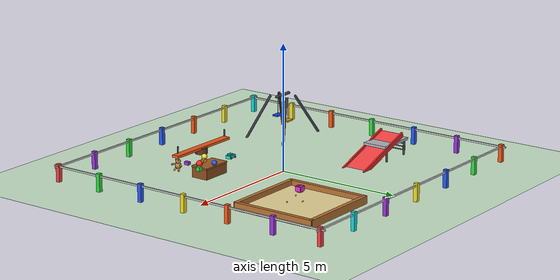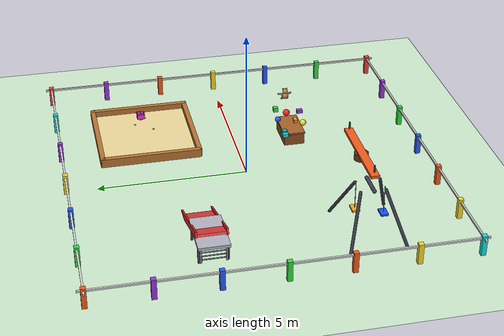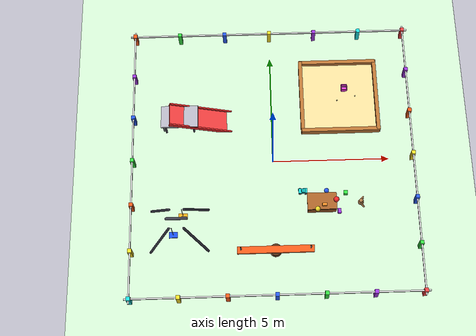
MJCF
<mujoco model="childrens_playground_toys">
  <compiler angle="degree" coordinate="local"/>
  <option timestep="0.002" gravity="0 0 -9.81" integrator="RK4"/>

  <visual>
    <headlight ambient="0.35 0.35 0.35" diffuse="0.7 0.7 0.7" specular="0.1 0.1 0.1"/>
    <rgba haze="0.9 0.95 1 1"/>
  </visual>

  <asset>
    <!-- No textures/materials per instructions -->
  </asset>

  <worldbody>
    <!-- Ground -->
    <geom name="ground" type="plane" size="30 30 0.1" rgba="0.80 0.92 0.80 1" friction="1 0.02 0.001"/>

    <!-- Soft-ish sandbox border (static) -->
    <body name="sandbox" pos="3 3 0">
      <geom name="sandbox_floor" type="box" pos="0 0 0.05" size="1.6 1.6 0.05" rgba="0.93 0.85 0.60 1" friction="1.2 0.02 0.001"/>
      <!-- border walls -->
      <geom name="sandbox_wall_n" type="box" pos="0 1.65 0.15" size="1.7 0.08 0.15" rgba="0.72 0.45 0.20 1"/>
      <geom name="sandbox_wall_s" type="box" pos="0 -1.65 0.15" size="1.7 0.08 0.15" rgba="0.72 0.45 0.20 1"/>
      <geom name="sandbox_wall_e" type="box" pos="1.65 0 0.15" size="0.08 1.7 0.15" rgba="0.72 0.45 0.20 1"/>
      <geom name="sandbox_wall_w" type="box" pos="-1.65 0 0.15" size="0.08 1.7 0.15" rgba="0.72 0.45 0.20 1"/>
    </body>

    <!-- Slide (static) -->
    <body name="slide" pos="-4 2 0">
      <!-- support platform -->
      <geom name="slide_platform" type="box" pos="0 0 0.6" size="0.8 0.5 0.05" rgba="0.70 0.70 0.75 1"/>
      <!-- ladder (simple) -->
      <geom name="slide_ladder_left" type="capsule" fromto="-0.7 -0.4 0.05  -0.7 -0.4 0.6" size="0.03" rgba="0.6 0.6 0.65 1"/>
      <geom name="slide_ladder_right" type="capsule" fromto="-0.7 0.4 0.05  -0.7 0.4 0.6" size="0.03" rgba="0.6 0.6 0.65 1"/>
      <geom name="slide_rung1" type="capsule" fromto="-0.7 -0.4 0.15  -0.7 0.4 0.15" size="0.02" rgba="0.6 0.6 0.65 1"/>
      <geom name="slide_rung2" type="capsule" fromto="-0.7 -0.4 0.28  -0.7 0.4 0.28" size="0.02" rgba="0.6 0.6 0.65 1"/>
      <geom name="slide_rung3" type="capsule" fromto="-0.7 -0.4 0.41  -0.7 0.4 0.41" size="0.02" rgba="0.6 0.6 0.65 1"/>
      <geom name="slide_rung4" type="capsule" fromto="-0.7 -0.4 0.54  -0.7 0.4 0.54" size="0.02" rgba="0.6 0.6 0.65 1"/>

      <!-- slide ramp (tilted box) -->
      <geom name="slide_ramp" type="box" pos="0.9 0 0.35" size="1.4 0.45 0.04" euler="0 20 0" rgba="0.95 0.25 0.25 1" friction="0.6 0.01 0.001"/>
      <!-- side rails -->
      <geom name="slide_rail_left" type="box" pos="0.9 -0.48 0.38" size="1.4 0.03 0.10" euler="0 20 0" rgba="0.90 0.15 0.15 1"/>
      <geom name="slide_rail_right" type="box" pos="0.9 0.48 0.38" size="1.4 0.03 0.10" euler="0 20 0" rgba="0.90 0.15 0.15 1"/>

      <!-- legs -->
      <geom name="slide_leg1" type="capsule" fromto="-0.6 -0.45 0  -0.6 -0.45 0.6" size="0.04" rgba="0.25 0.25 0.30 1"/>
      <geom name="slide_leg2" type="capsule" fromto="-0.6 0.45 0  -0.6 0.45 0.6" size="0.04" rgba="0.25 0.25 0.30 1"/>
      <geom name="slide_leg3" type="capsule" fromto="0.6 -0.45 0  0.6 -0.45 0.6" size="0.04" rgba="0.25 0.25 0.30 1"/>
      <geom name="slide_leg4" type="capsule" fromto="0.6 0.45 0  0.6 0.45 0.6" size="0.04" rgba="0.25 0.25 0.30 1"/>
    </body>

    <!-- Swing set (static frame + dynamic seats) -->
    <body name="swing_set" pos="-4 -3 0">
      <!-- A-frame legs -->
      <geom name="swing_leg1" type="capsule" fromto="-1.2 -0.9 0  -0.3 -0.4 1.6" size="0.05" rgba="0.2 0.2 0.25 1"/>
      <geom name="swing_leg2" type="capsule" fromto="-1.2 0.9 0  -0.3 0.4 1.6" size="0.05" rgba="0.2 0.2 0.25 1"/>
      <geom name="swing_leg3" type="capsule" fromto="1.2 -0.9 0  0.3 -0.4 1.6" size="0.05" rgba="0.2 0.2 0.25 1"/>
      <geom name="swing_leg4" type="capsule" fromto="1.2 0.9 0  0.3 0.4 1.6" size="0.05" rgba="0.2 0.2 0.25 1"/>

      <!-- top bar -->
      <geom name="swing_top" type="capsule" fromto="-0.4 0 1.65  0.4 0 1.65" size="0.06" rgba="0.25 0.25 0.30 1"/>

      <!-- left swing: hinges + seat -->
      <body name="swing_left_hanger" pos="-0.2 -0.4 1.65">
        <joint name="swing_left_hinge" type="hinge" axis="0 1 0" limited="true" range="-60 60" damping="0.5"/>
        <geom name="swing_left_chain" type="capsule" fromto="0 0 0   0 0 -0.9" size="0.01" rgba="0.75 0.75 0.78 1"/>
        <body name="swing_left_seat" pos="0 0 -0.95">
          <geom name="swing_left_seat_geom" type="box" pos="0 0 0" size="0.18 0.12 0.03" rgba="0.10 0.30 0.95 1" friction="1 0.02 0.001"/>
        </body>
      </body>

      <!-- right swing -->
      <body name="swing_right_hanger" pos="0.2 0.4 1.65">
        <joint name="swing_right_hinge" type="hinge" axis="0 1 0" limited="true" range="-60 60" damping="0.5"/>
        <geom name="swing_right_chain" type="capsule" fromto="0 0 0   0 0 -0.9" size="0.01" rgba="0.75 0.75 0.78 1"/>
        <body name="swing_right_seat" pos="0 0 -0.95">
          <geom name="swing_right_seat_geom" type="box" pos="0 0 0" size="0.18 0.12 0.03" rgba="0.95 0.65 0.10 1" friction="1 0.02 0.001"/>
        </body>
      </body>
    </body>

    <!-- Seesaw (static base + moving plank) -->
    <body name="seesaw" pos="0 -4 0">
      <geom name="seesaw_base" type="cylinder" pos="0 0 0.12" size="0.25 0.12" rgba="0.35 0.20 0.10 1"/>
      <body name="seesaw_plank" pos="0 0 0.25">
        <joint name="seesaw_hinge" type="hinge" axis="0 1 0" limited="true" range="-25 25" damping="1"/>
        <geom name="seesaw_plank_geom" type="box" pos="0 0 0" size="1.6 0.15 0.05" rgba="0.95 0.35 0.10 1" friction="1.2 0.02 0.001"/>
        <geom name="seesaw_handle_left" type="capsule" fromto="-1.45 0 0.12  -1.45 0 0.35" size="0.03" rgba="0.15 0.15 0.15 1"/>
        <geom name="seesaw_handle_right" type="capsule" fromto="1.45 0 0.12  1.45 0 0.35" size="0.03" rgba="0.15 0.15 0.15 1"/>
      </body>
    </body>

    <!-- Toy chest (static) -->
    <body name="toy_chest" pos="2 -2 0">
      <geom name="toy_chest_base" type="box" pos="0 0 0.2" size="0.6 0.35 0.2" rgba="0.55 0.30 0.12 1" friction="1 0.02 0.001"/>
      <geom name="toy_chest_lid" type="box" pos="0 0 0.43" size="0.62 0.37 0.03" rgba="0.65 0.38 0.16 1"/>
    </body>

    <!-- Moving toys: balls, blocks, toy car, teddy-like shape -->
    <body name="ball_red" pos="2.6 -2.0 0.6">
      <freejoint name="ball_red_free"/>
      <geom name="ball_red_geom" type="sphere" size="0.12" rgba="0.95 0.15 0.15 1" friction="0.9 0.01 0.001" density="300"/>
    </body>

    <body name="ball_blue" pos="2.2 -1.6 0.6">
      <freejoint name="ball_blue_free"/>
      <geom name="ball_blue_geom" type="sphere" size="0.10" rgba="0.15 0.35 0.95 1" friction="0.9 0.01 0.001" density="300"/>
    </body>

    <body name="ball_yellow" pos="1.8 -2.4 0.6">
      <freejoint name="ball_yellow_free"/>
      <geom name="ball_yellow_geom" type="sphere" size="0.11" rgba="0.95 0.85 0.15 1" friction="0.9 0.01 0.001" density="300"/>
    </body>

    <body name="block_green" pos="3.0 -1.7 0.55">
      <freejoint name="block_green_free"/>
      <geom name="block_green_geom" type="box" size="0.08 0.08 0.08" rgba="0.20 0.85 0.25 1" friction="1.1 0.02 0.001" density="500"/>
    </body>

    <body name="block_purple" pos="2.7 -2.5 0.55">
      <freejoint name="block_purple_free"/>
      <geom name="block_purple_geom" type="box" size="0.07 0.10 0.06" rgba="0.60 0.20 0.85 1" friction="1.1 0.02 0.001" density="500"/>
    </body>

    <body name="block_orange" pos="2.1 -2.2 0.55">
      <freejoint name="block_orange_free"/>
      <geom name="block_orange_geom" type="box" size="0.10 0.06 0.06" rgba="0.95 0.55 0.15 1" friction="1.1 0.02 0.001" density="500"/>
    </body>

    <!-- Toy car (simple composite) -->
    <body name="toy_car" pos="1.2 -1.6 0.55">
      <freejoint name="toy_car_free"/>
      <geom name="toy_car_body" type="box" pos="0 0 0.06" size="0.18 0.10 0.06" rgba="0.10 0.85 0.85 1" friction="1.2 0.02 0.001" density="400"/>
      <geom name="toy_car_cabin" type="box" pos="0.03 0 0.12" size="0.09 0.08 0.05" rgba="0.05 0.65 0.65 1" density="250"/>
      <geom name="toy_car_wheel_fl" type="cylinder" pos="0.12 0.11 0.03" size="0.04 0.02" euler="90 0 0" rgba="0.12 0.12 0.12 1" friction="2 0.02 0.001" density="300"/>
      <geom name="toy_car_wheel_fr" type="cylinder" pos="0.12 -0.11 0.03" size="0.04 0.02" euler="90 0 0" rgba="0.12 0.12 0.12 1" friction="2 0.02 0.001" density="300"/>
      <geom name="toy_car_wheel_rl" type="cylinder" pos="-0.12 0.11 0.03" size="0.04 0.02" euler="90 0 0" rgba="0.12 0.12 0.12 1" friction="2 0.02 0.001" density="300"/>
      <geom name="toy_car_wheel_rr" type="cylinder" pos="-0.12 -0.11 0.03" size="0.04 0.02" euler="90 0 0" rgba="0.12 0.12 0.12 1" friction="2 0.02 0.001" density="300"/>
    </body>

    <!-- Teddy bear-like toy (capsules/spheres) -->
    <body name="teddy" pos="3.6 -2.2 0.65">
      <freejoint name="teddy_free"/>
      <geom name="teddy_body" type="sphere" pos="0 0 0.08" size="0.12" rgba="0.70 0.50 0.30 1" density="200" friction="1 0.02 0.001"/>
      <geom name="teddy_head" type="sphere" pos="0 0 0.25" size="0.09" rgba="0.72 0.52 0.32 1" density="200"/>
      <geom name="teddy_ear_l" type="sphere" pos="0.06 0.06 0.32" size="0.03" rgba="0.72 0.52 0.32 1" density="150"/>
      <geom name="teddy_ear_r" type="sphere" pos="0.06 -0.06 0.32" size="0.03" rgba="0.72 0.52 0.32 1" density="150"/>
      <geom name="teddy_arm_l" type="capsule" fromto="0 0.10 0.14  0.10 0.22 0.12" size="0.03" rgba="0.68 0.48 0.28 1" density="180"/>
      <geom name="teddy_arm_r" type="capsule" fromto="0 -0.10 0.14  0.10 -0.22 0.12" size="0.03" rgba="0.68 0.48 0.28 1" density="180"/>
      <geom name="teddy_leg_l" type="capsule" fromto="0.02 0.06 0.02  0.10 0.10 -0.08" size="0.035" rgba="0.68 0.48 0.28 1" density="220"/>
      <geom name="teddy_leg_r" type="capsule" fromto="0.02 -0.06 0.02  0.10 -0.10 -0.08" size="0.035" rgba="0.68 0.48 0.28 1" density="220"/>
    </body>

    <!-- Small toy bucket (open top approximated by thin walls; moving) -->
    <body name="toy_bucket" pos="3.2 3.1 0.65">
      <freejoint name="toy_bucket_free"/>
      <geom name="bucket_bottom" type="cylinder" pos="0 0 0.03" size="0.12 0.03" rgba="0.95 0.25 0.85 1" density="250" friction="1 0.02 0.001"/>
      <geom name="bucket_wall1" type="box" pos="0.12 0 0.12" size="0.01 0.12 0.09" rgba="0.90 0.20 0.80 1" density="200"/>
      <geom name="bucket_wall2" type="box" pos="-0.12 0 0.12" size="0.01 0.12 0.09" rgba="0.90 0.20 0.80 1" density="200"/>
      <geom name="bucket_wall3" type="box" pos="0 0.12 0.12" size="0.12 0.01 0.09" rgba="0.90 0.20 0.80 1" density="200"/>
      <geom name="bucket_wall4" type="box" pos="0 -0.12 0.12" size="0.12 0.01 0.09" rgba="0.90 0.20 0.80 1" density="200"/>
      <geom name="bucket_handle" type="capsule" fromto="-0.10 0 0.22  0.10 0 0.22" size="0.01" rgba="0.75 0.75 0.78 1" density="150"/>
    </body>

    <!-- A few scattered "sand" pebbles (moving small spheres) -->
    <body name="pebble1" pos="3.3 3.3 0.35">
      <freejoint name="pebble1_free"/>
      <geom name="pebble1_geom" type="sphere" size="0.03" rgba="0.85 0.78 0.55 1" density="800" friction="1.2 0.02 0.001"/>
    </body>
    <body name="pebble2" pos="2.9 2.7 0.35">
      <freejoint name="pebble2_free"/>
      <geom name="pebble2_geom" type="sphere" size="0.028" rgba="0.88 0.80 0.58 1" density="800" friction="1.2 0.02 0.001"/>
    </body>
    <body name="pebble3" pos="3.7 2.9 0.35">
      <freejoint name="pebble3_free"/>
      <geom name="pebble3_geom" type="sphere" size="0.026" rgba="0.82 0.76 0.55 1" density="800" friction="1.2 0.02 0.001"/>
    </body>

    <!-- Perimeter colorful fence posts (static) -->
    <body name="fence" pos="0 0 0">
      <!-- north line -->
      <geom name="fence_n1" type="box" pos="-6 6 0.35" size="0.08 0.08 0.35" rgba="0.95 0.35 0.10 1"/>
      <geom name="fence_n2" type="box" pos="-4 6 0.35" size="0.08 0.08 0.35" rgba="0.20 0.85 0.25 1"/>
      <geom name="fence_n3" type="box" pos="-2 6 0.35" size="0.08 0.08 0.35" rgba="0.15 0.35 0.95 1"/>
      <geom name="fence_n4" type="box" pos="0 6 0.35" size="0.08 0.08 0.35" rgba="0.95 0.85 0.15 1"/>
      <geom name="fence_n5" type="box" pos="2 6 0.35" size="0.08 0.08 0.35" rgba="0.60 0.20 0.85 1"/>
      <geom name="fence_n6" type="box" pos="4 6 0.35" size="0.08 0.08 0.35" rgba="0.10 0.85 0.85 1"/>
      <geom name="fence_n7" type="box" pos="6 6 0.35" size="0.08 0.08 0.35" rgba="0.95 0.25 0.25 1"/>

      <!-- south line -->
      <geom name="fence_s1" type="box" pos="-6 -6 0.35" size="0.08 0.08 0.35" rgba="0.10 0.85 0.85 1"/>
      <geom name="fence_s2" type="box" pos="-4 -6 0.35" size="0.08 0.08 0.35" rgba="0.95 0.85 0.15 1"/>
      <geom name="fence_s3" type="box" pos="-2 -6 0.35" size="0.08 0.08 0.35" rgba="0.95 0.35 0.10 1"/>
      <geom name="fence_s4" type="box" pos="0 -6 0.35" size="0.08 0.08 0.35" rgba="0.15 0.35 0.95 1"/>
      <geom name="fence_s5" type="box" pos="2 -6 0.35" size="0.08 0.08 0.35" rgba="0.20 0.85 0.25 1"/>
      <geom name="fence_s6" type="box" pos="4 -6 0.35" size="0.08 0.08 0.35" rgba="0.60 0.20 0.85 1"/>
      <geom name="fence_s7" type="box" pos="6 -6 0.35" size="0.08 0.08 0.35" rgba="0.95 0.25 0.25 1"/>

      <!-- west line -->
      <geom name="fence_w1" type="box" pos="-6 -4 0.35" size="0.08 0.08 0.35" rgba="0.95 0.85 0.15 1"/>
      <geom name="fence_w2" type="box" pos="-6 -2 0.35" size="0.08 0.08 0.35" rgba="0.95 0.35 0.10 1"/>
      <geom name="fence_w3" type="box" pos="-6 0 0.35" size="0.08 0.08 0.35" rgba="0.20 0.85 0.25 1"/>
      <geom name="fence_w4" type="box" pos="-6 2 0.35" size="0.08 0.08 0.35" rgba="0.15 0.35 0.95 1"/>
      <geom name="fence_w5" type="box" pos="-6 4 0.35" size="0.08 0.08 0.35" rgba="0.60 0.20 0.85 1"/>

      <!-- east line -->
      <geom name="fence_e1" type="box" pos="6 -4 0.35" size="0.08 0.08 0.35" rgba="0.20 0.85 0.25 1"/>
      <geom name="fence_e2" type="box" pos="6 -2 0.35" size="0.08 0.08 0.35" rgba="0.15 0.35 0.95 1"/>
      <geom name="fence_e3" type="box" pos="6 0 0.35" size="0.08 0.08 0.35" rgba="0.95 0.85 0.15 1"/>
      <geom name="fence_e4" type="box" pos="6 2 0.35" size="0.08 0.08 0.35" rgba="0.95 0.35 0.10 1"/>
      <geom name="fence_e5" type="box" pos="6 4 0.35" size="0.08 0.08 0.35" rgba="0.60 0.20 0.85 1"/>

      <!-- simple rails -->
      <geom name="fence_rail_n" type="box" pos="0 6 0.6" size="6.2 0.03 0.03" rgba="0.85 0.85 0.85 1"/>
      <geom name="fence_rail_s" type="box" pos="0 -6 0.6" size="6.2 0.03 0.03" rgba="0.85 0.85 0.85 1"/>
      <geom name="fence_rail_w" type="box" pos="-6 0 0.6" size="0.03 6.2 0.03" rgba="0.85 0.85 0.85 1"/>
      <geom name="fence_rail_e" type="box" pos="6 0 0.6" size="0.03 6.2 0.03" rgba="0.85 0.85 0.85 1"/>
    </body>

    <!-- Lighting -->
    <light name="sun" pos="0 0 8" dir="0 0 -1" directional="true" diffuse="0.9 0.9 0.9" specular="0.1 0.1 0.1"/>
    <light name="fill" pos="5 -5 4" dir="-1 1 -1" directional="true" diffuse="0.35 0.35 0.35" specular="0 0 0"/>
  </worldbody>
</mujoco>
